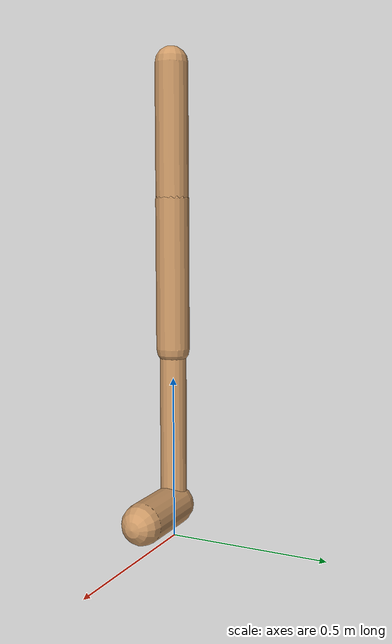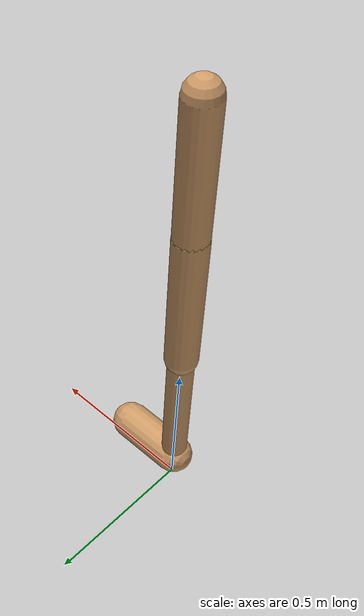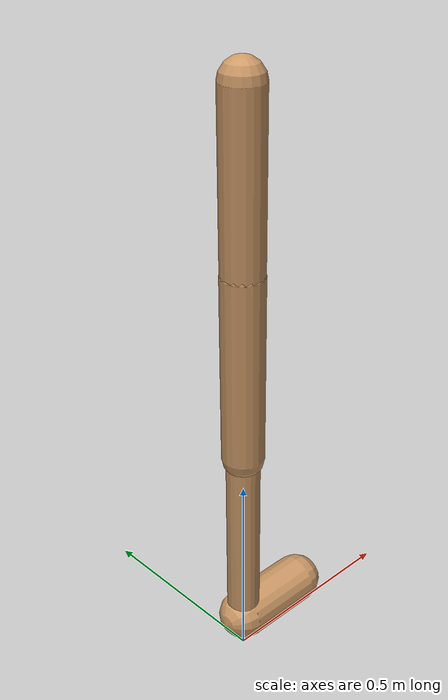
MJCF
<mujoco model="walker2d">
  <compiler angle="degree" coordinate="global" inertiafromgeom="true" />
  <default>
    <joint armature="0.01" damping=".1" limited="true" />
    <geom conaffinity="0" condim="3" contype="1" density="1000" friction="0.8 .1 .1" rgba="0.8 0.6 .4 1" />
  </default>
  <option integrator="RK4" timestep="0.002" />
  <worldbody>

    <body name="torso" pos="0 0 0.01552118452260677">
      <joint armature="0" axis="1 0 0" damping="0" limited="false" name="ignorex" pos="0 0 0" stiffness="0" type="slide" />
      <joint armature="0" axis="0 0 1" damping="0" limited="false" name="ignorez" pos="0 0 0" ref="1.25" stiffness="0" type="slide" />
      <joint armature="0" axis="0 1 0" damping="0" limited="false" name="ignorey" pos="0 0 0" stiffness="0" type="hinge" />
      <geom fromto="0 0 1.45 0 0 1.05" name="torso_geom" size="0.05034512168532303" type="capsule" />
      <body name="thigh">
        <joint axis="0 -1 0" name="thigh_joint" pos="0 0 1.05" range="-150 0" type="hinge" />
        <geom fromto="0.0 0.0 1.05 0.0 0.0 0.5926478599629758" name="thigh_geom" size="0.05120645597229689" type="capsule" />
        <body name="leg" pos="0.0 0.0 -0.007352140037024224">
          <joint axis="0 -1 0" name="leg_joint" pos="0 0 0.6" range="-150 0" type="hinge" />
          <geom fromto="0.0 0.0 0.6 0.0 0.0 0.0918309555144175" name="leg_geom" size="0.04096516477783751" type="capsule" />
          <body name="foot" pos="0.0 0.0 -0.008169044485582505">
            <joint axis="0 -1 0" name="foot_joint" pos="0 0 0.1" range="-45 45" type="hinge" />
            <geom fromto="0.0 0.0 0.1 0.19399559956303966 0.0 0.1" name="foot_geom" size="0.06228570494540978" type="capsule" />
          </body>
        </body>
      </body>

      <body name="thigh_left">
        <joint axis="0 -1 0" name="thigh_left_joint" pos="0 0 1.05" range="-150 0" type="hinge" />
        <geom fromto="0.0 0.0 1.05 0.0 0.0 0.5926478599629758" name="thigh_left_geom" rgba=".7 .3 .6 1" size="0.05120645597229689" type="capsule" />
        <body name="leg_left" pos="0.0 0.0 -0.007352140037024224">
          <joint axis="0 -1 0" name="leg_left_joint" pos="0 0 0.6" range="-150 0" type="hinge" />
          <geom fromto="0.0 0.0 0.6 0.0 0.0 0.0918309555144175" name="leg_left_geom" rgba=".7 .3 .6 1" size="0.04096516477783751" type="capsule" />
          <body name="foot_left" pos="0.0 0.0 -0.008169044485582505">
            <joint axis="0 -1 0" name="foot_left_joint" pos="0 0 0.1" range="-45 45" type="hinge" />
            <geom fromto="0.0 0.0 0.1 0.19399559956303966 0.0 0.1" name="foot_left_geom" rgba=".7 .3 .6 1" size="0.06228570494540978" type="capsule" />
          </body>
        </body>
      </body>
    </body>
  </worldbody>
  <actuator>

    <motor ctrllimited="true" ctrlrange="-1.0 1.0" gear="100" joint="thigh_joint" />
    <motor ctrllimited="true" ctrlrange="-1.0 1.0" gear="100" joint="leg_joint" />
    <motor ctrllimited="true" ctrlrange="-1.0 1.0" gear="100" joint="foot_joint" />
    <motor ctrllimited="true" ctrlrange="-1.0 1.0" gear="100" joint="thigh_left_joint" />
    <motor ctrllimited="true" ctrlrange="-1.0 1.0" gear="100" joint="leg_left_joint" />
    <motor ctrllimited="true" ctrlrange="-1.0 1.0" gear="100" joint="foot_left_joint" />

  </actuator>
</mujoco>
